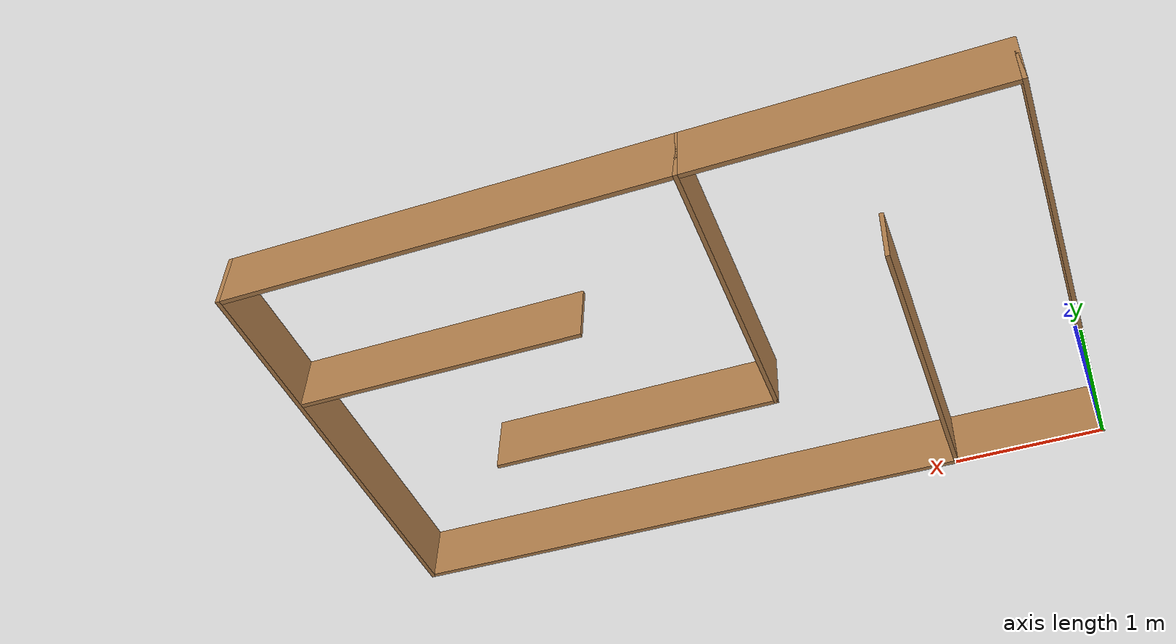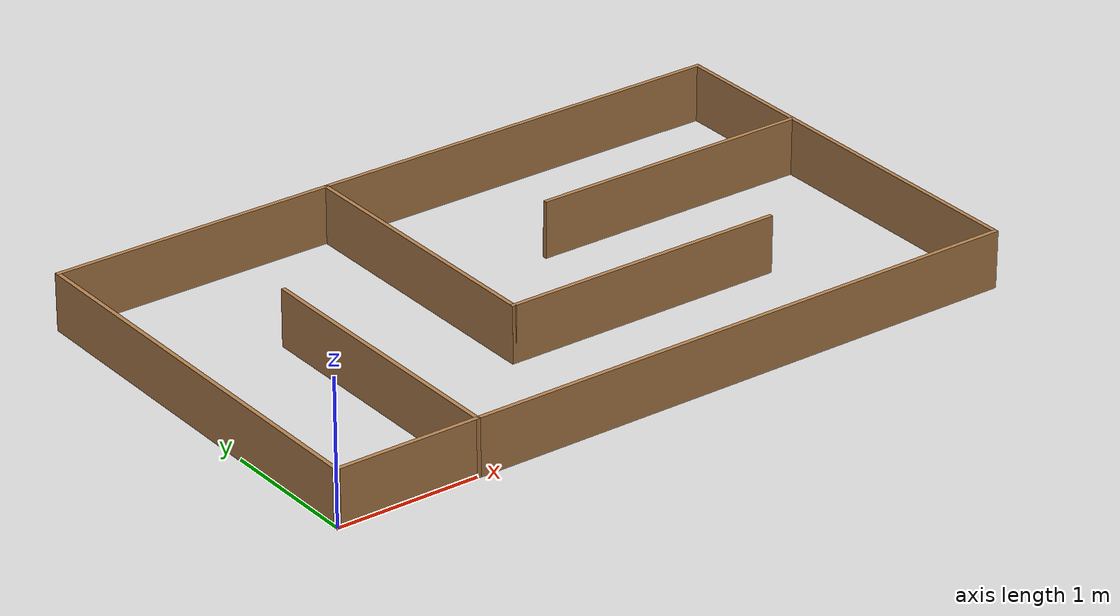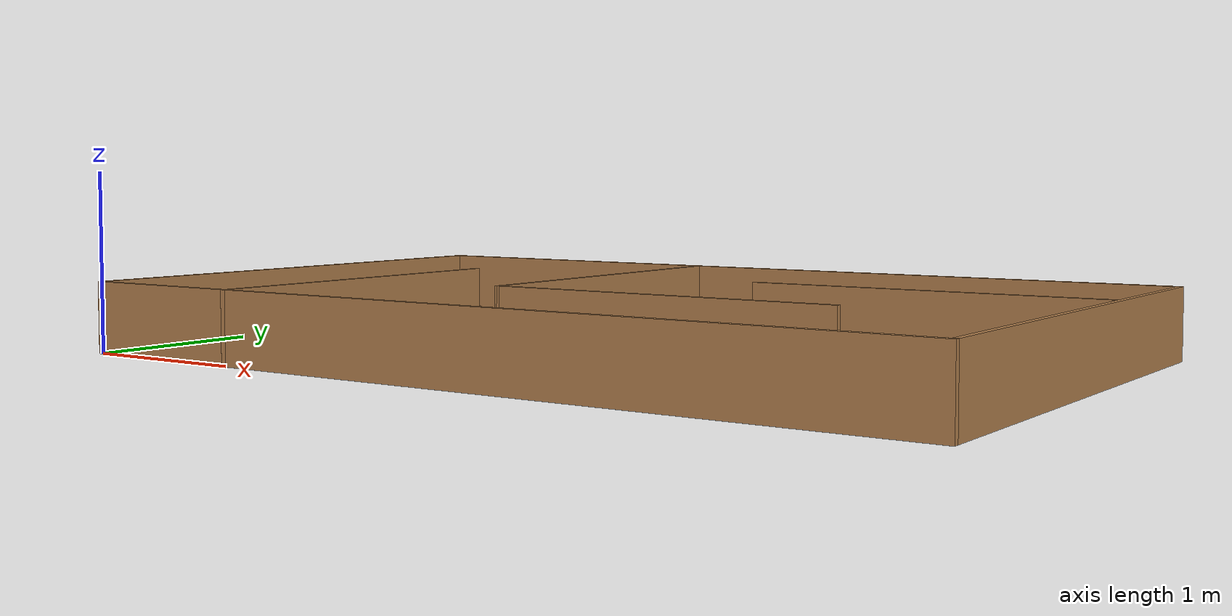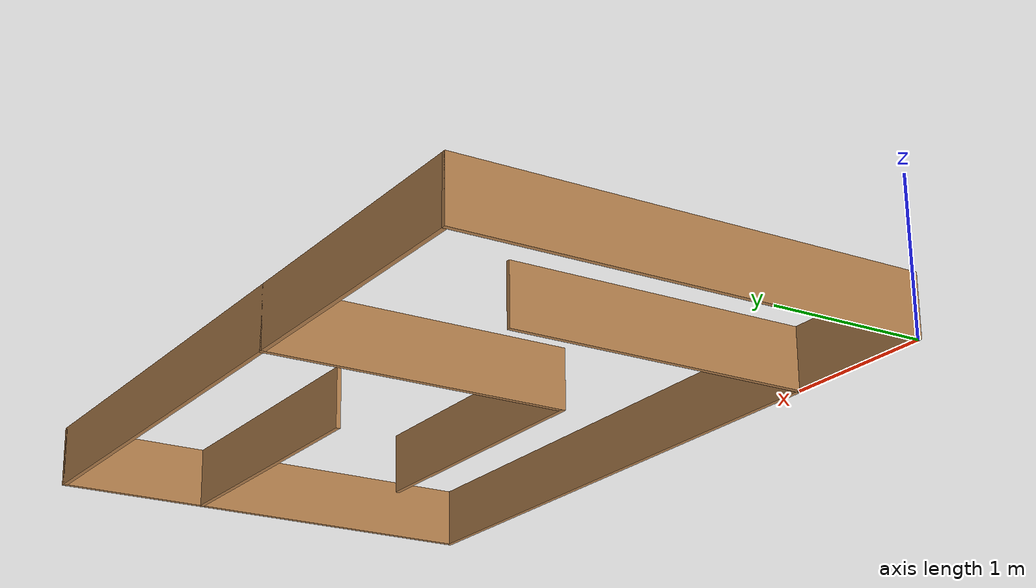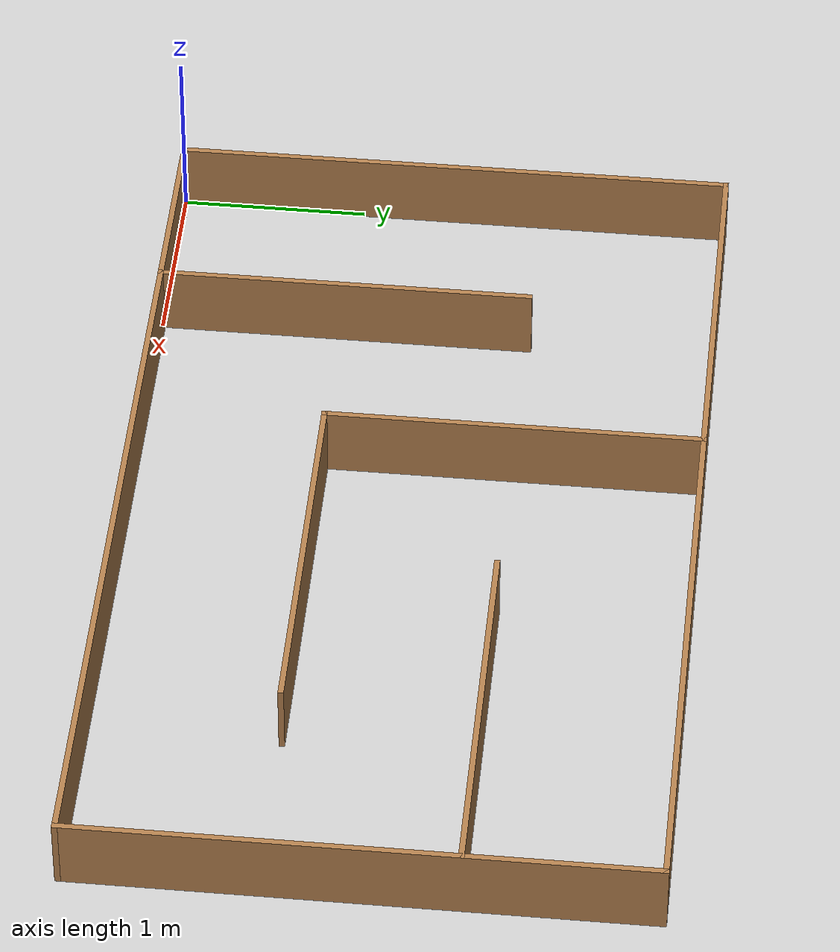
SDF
<?xml version='1.0'?>
<sdf version='1.6'>
  <model name='room'>
    <pose frame=''>2.5 1.5 0 0 -0 0</pose>
    <link name='Wall_0'>
      <collision name='Wall_0_Collision'>
        <geometry>
          <box>
            <size>3.03 0.03 0.4</size>
          </box>
        </geometry>
        <pose frame=''>0 0 0.2 0 -0 0</pose>
      </collision>
      <visual name='Wall_0_Visual'>
        <pose frame=''>0 0 0.2 0 -0 0</pose>
        <geometry>
          <box>
            <size>3.03 0.03 0.4</size>
          </box>
        </geometry>
        <material>
          <script>
            <uri>file://media/materials/scripts/gazebo.material</uri>
            <name>Gazebo/Wood</name>
          </script>
          <ambient>1 1 1 1</ambient>
        </material>
        <meta>
          <layer>0</layer>
        </meta>
      </visual>
      <pose frame=''>-2.5 -0 0 0 -0 1.5708</pose>
    </link>
    <link name='Wall_10'>
      <collision name='Wall_10_Collision'>
        <geometry>
          <box>
            <size>2.03 0.03 0.4</size>
          </box>
        </geometry>
        <pose frame=''>0 0 0.2 0 -0 0</pose>
      </collision>
      <visual name='Wall_10_Visual'>
        <pose frame=''>0 0 0.2 0 -0 0</pose>
        <geometry>
          <box>
            <size>2.03 0.03 0.4</size>
          </box>
        </geometry>
        <material>
          <script>
            <uri>file://media/materials/scripts/gazebo.material</uri>
            <name>Gazebo/Wood</name>
          </script>
          <ambient>1 1 1 1</ambient>
        </material>
        <meta>
          <layer>0</layer>
        </meta>
      </visual>
      <pose frame=''>-0.5 0.5 0 0 -0 -1.5708</pose>
    </link>
    <link name='Wall_12'>
      <collision name='Wall_12_Collision'>
        <geometry>
          <box>
            <size>2.03 0.03 0.4</size>
          </box>
        </geometry>
        <pose frame=''>0 0 0.2 0 -0 0</pose>
      </collision>
      <visual name='Wall_12_Visual'>
        <pose frame=''>0 0 0.2 0 -0 0</pose>
        <geometry>
          <box>
            <size>2.03 0.03 0.4</size>
          </box>
        </geometry>
        <material>
          <script>
            <uri>file://media/materials/scripts/gazebo.material</uri>
            <name>Gazebo/Wood</name>
          </script>
          <ambient>1 1 1 1</ambient>
        </material>
        <meta>
          <layer>0</layer>
        </meta>
      </visual>
      <pose frame=''>0.5 -0.5 0 0 -0 0</pose>
    </link>
    <link name='Wall_14'>
      <collision name='Wall_14_Collision'>
        <geometry>
          <box>
            <size>2.03 0.03 0.4</size>
          </box>
        </geometry>
        <pose frame=''>0 0 0.2 0 -0 0</pose>
      </collision>
      <visual name='Wall_14_Visual'>
        <pose frame=''>0 0 0.2 0 -0 0</pose>
        <geometry>
          <box>
            <size>2.03 0.03 0.4</size>
          </box>
        </geometry>
        <material>
          <script>
            <uri>file://media/materials/scripts/gazebo.material</uri>
            <name>Gazebo/Wood</name>
          </script>
          <ambient>1 1 1 1</ambient>
        </material>
        <meta>
          <layer>0</layer>
        </meta>
      </visual>
      <pose frame=''>1.5 0.5 0 0 -0 3.14159</pose>
    </link>
    <link name='Wall_2'>
      <collision name='Wall_2_Collision'>
        <geometry>
          <box>
            <size>5.03 0.03 0.4</size>
          </box>
        </geometry>
        <pose frame=''>0 0 0.2 0 -0 0</pose>
      </collision>
      <visual name='Wall_2_Visual'>
        <pose frame=''>0 0 0.2 0 -0 0</pose>
        <geometry>
          <box>
            <size>5.03 0.03 0.4</size>
          </box>
        </geometry>
        <material>
          <script>
            <uri>file://media/materials/scripts/gazebo.material</uri>
            <name>Gazebo/Wood</name>
          </script>
          <ambient>1 1 1 1</ambient>
        </material>
        <meta>
          <layer>0</layer>
        </meta>
      </visual>
      <pose frame=''>-0 1.5 0 0 -0 0</pose>
    </link>
    <link name='Wall_4'>
      <collision name='Wall_4_Collision'>
        <geometry>
          <box>
            <size>3.03 0.03 0.4</size>
          </box>
        </geometry>
        <pose frame=''>0 0 0.2 0 -0 0</pose>
      </collision>
      <visual name='Wall_4_Visual'>
        <pose frame=''>0 0 0.2 0 -0 0</pose>
        <geometry>
          <box>
            <size>3.03 0.03 0.4</size>
          </box>
        </geometry>
        <material>
          <script>
            <uri>file://media/materials/scripts/gazebo.material</uri>
            <name>Gazebo/Wood</name>
          </script>
          <ambient>1 1 1 1</ambient>
        </material>
        <meta>
          <layer>0</layer>
        </meta>
      </visual>
      <pose frame=''>2.5 -0 0 0 -0 -1.5708</pose>
    </link>
    <link name='Wall_6'>
      <collision name='Wall_6_Collision'>
        <geometry>
          <box>
            <size>5.03 0.03 0.4</size>
          </box>
        </geometry>
        <pose frame=''>0 0 0.2 0 -0 0</pose>
      </collision>
      <visual name='Wall_6_Visual'>
        <pose frame=''>0 0 0.2 0 -0 0</pose>
        <geometry>
          <box>
            <size>5.03 0.03 0.4</size>
          </box>
        </geometry>
        <material>
          <script>
            <uri>file://media/materials/scripts/gazebo.material</uri>
            <name>Gazebo/Wood</name>
          </script>
          <ambient>1 1 1 1</ambient>
        </material>
        <meta>
          <layer>0</layer>
        </meta>
      </visual>
      <pose frame=''>-0 -1.5 0 0 -0 3.14159</pose>
    </link>
    <link name='Wall_8'>
      <collision name='Wall_8_Collision'>
        <geometry>
          <box>
            <size>2.03 0.03 0.4</size>
          </box>
        </geometry>
        <pose frame=''>0 0 0.2 0 -0 0</pose>
      </collision>
      <visual name='Wall_8_Visual'>
        <pose frame=''>0 0 0.2 0 -0 0</pose>
        <geometry>
          <box>
            <size>2.03 0.03 0.4</size>
          </box>
        </geometry>
        <material>
          <script>
            <uri>file://media/materials/scripts/gazebo.material</uri>
            <name>Gazebo/Wood</name>
          </script>
          <ambient>1 1 1 1</ambient>
        </material>
        <meta>
          <layer>0</layer>
        </meta>
      </visual>
      <pose frame=''>-1.5 -0.5 0 0 -0 1.5708</pose>
    </link>
    <static>1</static>
  </model>
</sdf>
